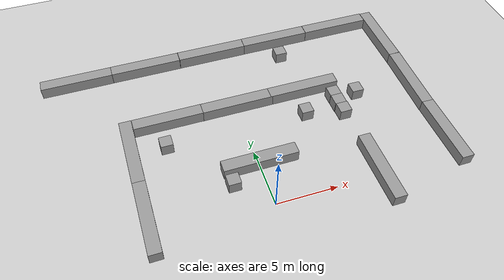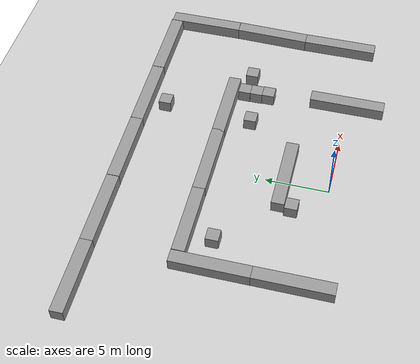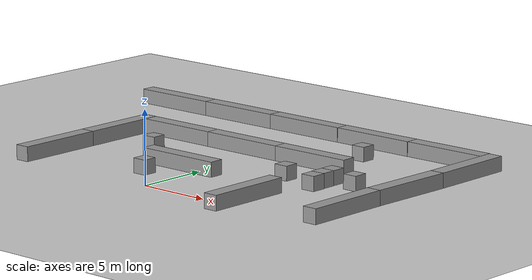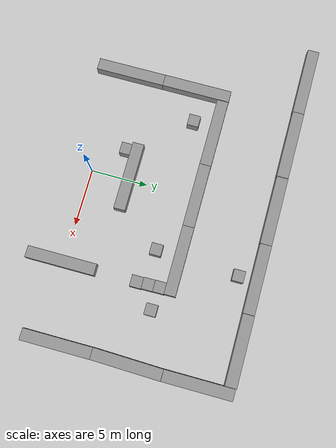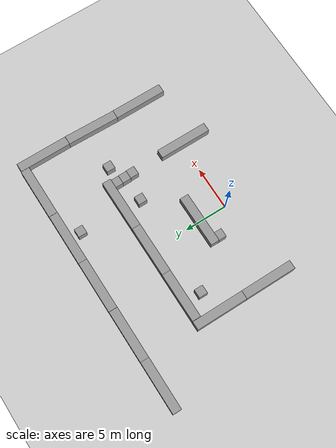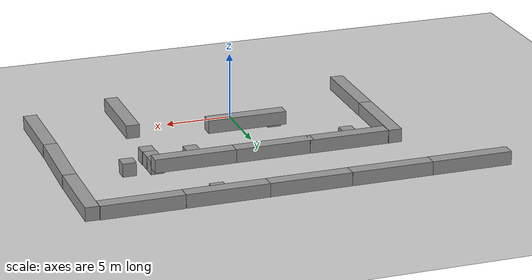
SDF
<sdf version="1.6">
 <world name="default">
  <model name="ground_plane">
   <static>1</static>
   <link name="link">
    <collision name="collision">
     <geometry><plane><normal>0 0 1</normal><size>100 100</size></plane></geometry>
     <surface>
      <contact><collide_bitmask>65535</collide_bitmask></contact>
      <friction><ode><mu>100</mu><mu2>50</mu2></ode></friction>
     </surface>
    </collision>
    <visual name="visual">
     <cast_shadows>0</cast_shadows>
     <geometry><plane><normal>0 0 1</normal><size>100 100</size></plane></geometry>
     <material>
      <script><uri>file://media/materials/scripts/gazebo.material</uri><name>Gazebo/Grey</name></script>
     </material>
    </visual>
   </link>
  </model>
  <model name="long_wall_0_0">
   <link name="link">
    <inertial>
     <mass>1</mass>
     <inertia>
      <ixx>0.166667</ixx>
      <ixy>0</ixy>
      <ixz>0</ixz>
      <iyy>0.166667</iyy>
      <iyz>0</iyz>
      <izz>0.166667</izz>
     </inertia>
    </inertial>
    <visual name="visual">
     <geometry><box><size>6 1 1</size></box></geometry>
     <material>
      <script><name>Gazebo/Grey</name><uri>file://media/materials/scripts/gazebo.material</uri></script>
      <shader type="vertex"><normal_map>__default__</normal_map></shader>
      <ambient>0.3 0.3 0.3 1</ambient>
      <diffuse>0.7 0.7 0.7 1</diffuse>
      <specular>0.01 0.01 0.01 1</specular>
      <emissive>0 0 0 1</emissive>
     </material>
     <pose>0 0 0.5 0 -0 0</pose>
    </visual>
    <collision name="collision">
     <geometry><box><size>1 1 1</size></box></geometry>
     <surface>
      <friction>
       <ode><mu>1</mu><mu2>1</mu2><fdir1>0 0 0</fdir1><slip1>0</slip1><slip2>0</slip2></ode>
       <torsional>
        <coefficient>1</coefficient>
        <patch_radius>0</patch_radius>
        <surface_radius>0</surface_radius>
        <use_patch_radius>1</use_patch_radius>
        <ode><slip>0</slip></ode>
       </torsional>
      </friction>
      <bounce><restitution_coefficient>0</restitution_coefficient><threshold>1e+06</threshold></bounce>
      <contact>
       <collide_without_contact>0</collide_without_contact>
       <collide_without_contact_bitmask>1</collide_without_contact_bitmask>
       <collide_bitmask>1</collide_bitmask>
       <ode>
        <soft_cfm>0</soft_cfm>
        <soft_erp>0.2</soft_erp>
        <kp>1e+13</kp>
        <kd>1</kd>
        <max_vel>0.01</max_vel>
        <min_depth>0</min_depth>
       </ode>
       <bullet>
        <split_impulse>1</split_impulse>
        <split_impulse_penetration_threshold>-0.01</split_impulse_penetration_threshold>
        <soft_cfm>0</soft_cfm>
        <soft_erp>0.2</soft_erp>
        <kp>1e+13</kp>
        <kd>1</kd>
       </bullet>
      </contact>
     </surface>
    </collision>
   </link>
   <static>0</static>
   <pose>-0.064351 3.46733 0.5 0 -0 0</pose>
  </model>
  <model name="unit_box_0">
   <pose>-2.48602 2.47883 0.499995 0 1e-05 0</pose>
   <link name="link">
    <inertial>
     <mass>1</mass>
     <inertia>
      <ixx>0.166667</ixx>
      <ixy>0</ixy>
      <ixz>0</ixz>
      <iyy>0.166667</iyy>
      <iyz>0</iyz>
      <izz>0.166667</izz>
     </inertia>
    </inertial>
    <collision name="collision"><geometry><box><size>1 1 1</size></box></geometry></collision>
    <visual name="visual">
     <geometry><box><size>1 1 1</size></box></geometry>
     <material>
      <script><name>Gazebo/Grey</name><uri>file://media/materials/scripts/gazebo.material</uri></script>
     </material>
    </visual>
   </link>
  </model>
  <model name="long_wall_0_2">
   <link name="link">
    <inertial>
     <mass>1</mass>
     <inertia>
      <ixx>0.166667</ixx>
      <ixy>0</ixy>
      <ixz>0</ixz>
      <iyy>0.166667</iyy>
      <iyz>0</iyz>
      <izz>0.166667</izz>
     </inertia>
    </inertial>
    <visual name="visual">
     <geometry><box><size>6 1 1</size></box></geometry>
     <material>
      <script><name>Gazebo/Grey</name><uri>file://media/materials/scripts/gazebo.material</uri></script>
      <shader type="vertex"><normal_map>__default__</normal_map></shader>
      <ambient>0.3 0.3 0.3 1</ambient>
      <diffuse>0.7 0.7 0.7 1</diffuse>
      <specular>0.01 0.01 0.01 1</specular>
      <emissive>0 0 0 1</emissive>
     </material>
     <pose>0 0 0.5 0 -0 0</pose>
    </visual>
    <collision name="collision">
     <geometry><box><size>1 1 1</size></box></geometry>
     <surface>
      <friction>
       <ode><mu>1</mu><mu2>1</mu2><fdir1>0 0 0</fdir1><slip1>0</slip1><slip2>0</slip2></ode>
       <torsional>
        <coefficient>1</coefficient>
        <patch_radius>0</patch_radius>
        <surface_radius>0</surface_radius>
        <use_patch_radius>1</use_patch_radius>
        <ode><slip>0</slip></ode>
       </torsional>
      </friction>
      <bounce><restitution_coefficient>0</restitution_coefficient><threshold>1e+06</threshold></bounce>
      <contact>
       <collide_without_contact>0</collide_without_contact>
       <collide_without_contact_bitmask>1</collide_without_contact_bitmask>
       <collide_bitmask>1</collide_bitmask>
       <ode>
        <soft_cfm>0</soft_cfm>
        <soft_erp>0.2</soft_erp>
        <kp>1e+13</kp>
        <kd>1</kd>
        <max_vel>0.01</max_vel>
        <min_depth>0</min_depth>
       </ode>
       <bullet>
        <split_impulse>1</split_impulse>
        <split_impulse_penetration_threshold>-0.01</split_impulse_penetration_threshold>
        <soft_cfm>0</soft_cfm>
        <soft_erp>0.2</soft_erp>
        <kp>1e+13</kp>
        <kd>1</kd>
       </bullet>
      </contact>
     </surface>
    </collision>
   </link>
   <static>0</static>
   <pose>-0.017464 9.51056 0.5 0 -0 0</pose>
  </model>
  <model name="long_wall_0_4">
   <link name="link">
    <inertial>
     <mass>1</mass>
     <inertia>
      <ixx>0.166667</ixx>
      <ixy>0</ixy>
      <ixz>0</ixz>
      <iyy>0.166667</iyy>
      <iyz>0</iyz>
      <izz>0.166667</izz>
     </inertia>
    </inertial>
    <visual name="visual">
     <geometry><box><size>6 1 1</size></box></geometry>
     <material>
      <script><name>Gazebo/Grey</name><uri>file://media/materials/scripts/gazebo.material</uri></script>
      <shader type="vertex"><normal_map>__default__</normal_map></shader>
      <ambient>0.3 0.3 0.3 1</ambient>
      <diffuse>0.7 0.7 0.7 1</diffuse>
      <specular>0.01 0.01 0.01 1</specular>
      <emissive>0 0 0 1</emissive>
     </material>
     <pose>0 0 0.5 0 -0 0</pose>
    </visual>
    <collision name="collision">
     <geometry><box><size>1 1 1</size></box></geometry>
     <surface>
      <friction>
       <ode><mu>1</mu><mu2>1</mu2><fdir1>0 0 0</fdir1><slip1>0</slip1><slip2>0</slip2></ode>
       <torsional>
        <coefficient>1</coefficient>
        <patch_radius>0</patch_radius>
        <surface_radius>0</surface_radius>
        <use_patch_radius>1</use_patch_radius>
        <ode><slip>0</slip></ode>
       </torsional>
      </friction>
      <bounce><restitution_coefficient>0</restitution_coefficient><threshold>1e+06</threshold></bounce>
      <contact>
       <collide_without_contact>0</collide_without_contact>
       <collide_without_contact_bitmask>1</collide_without_contact_bitmask>
       <collide_bitmask>1</collide_bitmask>
       <ode>
        <soft_cfm>0</soft_cfm>
        <soft_erp>0.2</soft_erp>
        <kp>1e+13</kp>
        <kd>1</kd>
        <max_vel>0.01</max_vel>
        <min_depth>0</min_depth>
       </ode>
       <bullet>
        <split_impulse>1</split_impulse>
        <split_impulse_penetration_threshold>-0.01</split_impulse_penetration_threshold>
        <soft_cfm>0</soft_cfm>
        <soft_erp>0.2</soft_erp>
        <kp>1e+13</kp>
        <kd>1</kd>
       </bullet>
      </contact>
     </surface>
    </collision>
   </link>
   <static>0</static>
   <pose>5.83103 9.51107 0.5 0 -0 0</pose>
  </model>
  <model name="long_wall_0_6">
   <link name="link">
    <inertial>
     <mass>1</mass>
     <inertia>
      <ixx>0.166667</ixx>
      <ixy>0</ixy>
      <ixz>0</ixz>
      <iyy>0.166667</iyy>
      <iyz>0</iyz>
      <izz>0.166667</izz>
     </inertia>
    </inertial>
    <visual name="visual">
     <geometry><box><size>6 1 1</size></box></geometry>
     <material>
      <script><name>Gazebo/Grey</name><uri>file://media/materials/scripts/gazebo.material</uri></script>
      <shader type="vertex"><normal_map>__default__</normal_map></shader>
      <ambient>0.3 0.3 0.3 1</ambient>
      <diffuse>0.7 0.7 0.7 1</diffuse>
      <specular>0.01 0.01 0.01 1</specular>
      <emissive>0 0 0 1</emissive>
     </material>
     <pose>0 0 0.5 0 -0 0</pose>
    </visual>
    <collision name="collision">
     <geometry><box><size>1 1 1</size></box></geometry>
     <surface>
      <friction>
       <ode><mu>1</mu><mu2>1</mu2><fdir1>0 0 0</fdir1><slip1>0</slip1><slip2>0</slip2></ode>
       <torsional>
        <coefficient>1</coefficient>
        <patch_radius>0</patch_radius>
        <surface_radius>0</surface_radius>
        <use_patch_radius>1</use_patch_radius>
        <ode><slip>0</slip></ode>
       </torsional>
      </friction>
      <bounce><restitution_coefficient>0</restitution_coefficient><threshold>1e+06</threshold></bounce>
      <contact>
       <collide_without_contact>0</collide_without_contact>
       <collide_without_contact_bitmask>1</collide_without_contact_bitmask>
       <collide_bitmask>1</collide_bitmask>
       <ode>
        <soft_cfm>0</soft_cfm>
        <soft_erp>0.2</soft_erp>
        <kp>1e+13</kp>
        <kd>1</kd>
        <max_vel>0.01</max_vel>
        <min_depth>0</min_depth>
       </ode>
       <bullet>
        <split_impulse>1</split_impulse>
        <split_impulse_penetration_threshold>-0.01</split_impulse_penetration_threshold>
        <soft_cfm>0</soft_cfm>
        <soft_erp>0.2</soft_erp>
        <kp>1e+13</kp>
        <kd>1</kd>
       </bullet>
      </contact>
     </surface>
    </collision>
   </link>
   <static>0</static>
   <pose>8.40487 -0.007823 0.5 0 0 -1.5708</pose>
  </model>
  <model name="unit_box_1">
   <pose>8.34623 8.52916 0.499995 -1e-05 -0 0.000273</pose>
   <link name="link">
    <inertial>
     <mass>1</mass>
     <inertia>
      <ixx>0.166667</ixx>
      <ixy>0</ixy>
      <ixz>0</ixz>
      <iyy>0.166667</iyy>
      <iyz>0</iyz>
      <izz>0.166667</izz>
     </inertia>
    </inertial>
    <collision name="collision"><geometry><box><size>1 1 1</size></box></geometry></collision>
    <visual name="visual">
     <geometry><box><size>1 1 1</size></box></geometry>
     <material>
      <script><name>Gazebo/Grey</name><uri>file://media/materials/scripts/gazebo.material</uri></script>
     </material>
    </visual>
   </link>
  </model>
  <model name="unit_box_2">
   <pose>8.36218 7.52911 0.499995 0 -1e-05 0.000273</pose>
   <link name="link">
    <inertial>
     <mass>1</mass>
     <inertia>
      <ixx>0.166667</ixx>
      <ixy>0</ixy>
      <ixz>0</ixz>
      <iyy>0.166667</iyy>
      <iyz>0</iyz>
      <izz>0.166667</izz>
     </inertia>
    </inertial>
    <collision name="collision"><geometry><box><size>1 1 1</size></box></geometry></collision>
    <visual name="visual">
     <geometry><box><size>1 1 1</size></box></geometry>
     <material>
      <script><name>Gazebo/Grey</name><uri>file://media/materials/scripts/gazebo.material</uri></script>
     </material>
    </visual>
   </link>
  </model>
  <model name="unit_box_3">
   <pose>8.40515 6.52912 0.499995 0 -1e-05 0.00027</pose>
   <link name="link">
    <inertial>
     <mass>1</mass>
     <inertia>
      <ixx>0.166667</ixx>
      <ixy>0</ixy>
      <ixz>0</ixz>
      <iyy>0.166667</iyy>
      <iyz>0</iyz>
      <izz>0.166667</izz>
     </inertia>
    </inertial>
    <collision name="collision"><geometry><box><size>1 1 1</size></box></geometry></collision>
    <visual name="visual">
     <geometry><box><size>1 1 1</size></box></geometry>
     <material>
      <script><name>Gazebo/Grey</name><uri>file://media/materials/scripts/gazebo.material</uri></script>
     </material>
    </visual>
   </link>
  </model>
  <model name="long_wall_0_7">
   <link name="link">
    <inertial>
     <mass>1</mass>
     <inertia>
      <ixx>0.166667</ixx>
      <ixy>0</ixy>
      <ixz>0</ixz>
      <iyy>0.166667</iyy>
      <iyz>0</iyz>
      <izz>0.166667</izz>
     </inertia>
    </inertial>
    <visual name="visual">
     <geometry><box><size>6 1 1</size></box></geometry>
     <material>
      <script><name>Gazebo/Grey</name><uri>file://media/materials/scripts/gazebo.material</uri></script>
      <shader type="vertex"><normal_map>__default__</normal_map></shader>
      <ambient>0.3 0.3 0.3 1</ambient>
      <diffuse>0.7 0.7 0.7 1</diffuse>
      <specular>0.01 0.01 0.01 1</specular>
      <emissive>0 0 0 1</emissive>
     </material>
     <pose>0 0 0.5 0 -0 0</pose>
    </visual>
    <collision name="collision">
     <geometry><box><size>1 1 1</size></box></geometry>
     <surface>
      <friction>
       <ode><mu>1</mu><mu2>1</mu2><fdir1>0 0 0</fdir1><slip1>0</slip1><slip2>0</slip2></ode>
       <torsional>
        <coefficient>1</coefficient>
        <patch_radius>0</patch_radius>
        <surface_radius>0</surface_radius>
        <use_patch_radius>1</use_patch_radius>
        <ode><slip>0</slip></ode>
       </torsional>
      </friction>
      <bounce><restitution_coefficient>0</restitution_coefficient><threshold>1e+06</threshold></bounce>
      <contact>
       <collide_without_contact>0</collide_without_contact>
       <collide_without_contact_bitmask>1</collide_without_contact_bitmask>
       <collide_bitmask>1</collide_bitmask>
       <ode>
        <soft_cfm>0</soft_cfm>
        <soft_erp>0.2</soft_erp>
        <kp>1e+13</kp>
        <kd>1</kd>
        <max_vel>0.01</max_vel>
        <min_depth>0</min_depth>
       </ode>
       <bullet>
        <split_impulse>1</split_impulse>
        <split_impulse_penetration_threshold>-0.01</split_impulse_penetration_threshold>
        <soft_cfm>0</soft_cfm>
        <soft_erp>0.2</soft_erp>
        <kp>1e+13</kp>
        <kd>1</kd>
       </bullet>
      </contact>
     </surface>
    </collision>
   </link>
   <static>0</static>
   <pose>-5.72862 9.522 0.5 0 -0 0</pose>
  </model>
  <model name="long_wall_0_9">
   <link name="link">
    <inertial>
     <mass>1</mass>
     <inertia>
      <ixx>0.166667</ixx>
      <ixy>0</ixy>
      <ixz>0</ixz>
      <iyy>0.166667</iyy>
      <iyz>0</iyz>
      <izz>0.166667</izz>
     </inertia>
    </inertial>
    <visual name="visual">
     <geometry><box><size>6 1 1</size></box></geometry>
     <material>
      <script><name>Gazebo/Grey</name><uri>file://media/materials/scripts/gazebo.material</uri></script>
      <shader type="vertex"><normal_map>__default__</normal_map></shader>
      <ambient>0.3 0.3 0.3 1</ambient>
      <diffuse>0.7 0.7 0.7 1</diffuse>
      <specular>0.01 0.01 0.01 1</specular>
      <emissive>0 0 0 1</emissive>
     </material>
     <pose>0 0 0.5 0 -0 0</pose>
    </visual>
    <collision name="collision">
     <geometry><box><size>1 1 1</size></box></geometry>
     <surface>
      <friction>
       <ode><mu>1</mu><mu2>1</mu2><fdir1>0 0 0</fdir1><slip1>0</slip1><slip2>0</slip2></ode>
       <torsional>
        <coefficient>1</coefficient>
        <patch_radius>0</patch_radius>
        <surface_radius>0</surface_radius>
        <use_patch_radius>1</use_patch_radius>
        <ode><slip>0</slip></ode>
       </torsional>
      </friction>
      <bounce><restitution_coefficient>0</restitution_coefficient><threshold>1e+06</threshold></bounce>
      <contact>
       <collide_without_contact>0</collide_without_contact>
       <collide_without_contact_bitmask>1</collide_without_contact_bitmask>
       <collide_bitmask>1</collide_bitmask>
       <ode>
        <soft_cfm>0</soft_cfm>
        <soft_erp>0.2</soft_erp>
        <kp>1e+13</kp>
        <kd>1</kd>
        <max_vel>0.01</max_vel>
        <min_depth>0</min_depth>
       </ode>
       <bullet>
        <split_impulse>1</split_impulse>
        <split_impulse_penetration_threshold>-0.01</split_impulse_penetration_threshold>
        <soft_cfm>0</soft_cfm>
        <soft_erp>0.2</soft_erp>
        <kp>1e+13</kp>
        <kd>1</kd>
       </bullet>
      </contact>
     </surface>
    </collision>
   </link>
   <static>0</static>
   <pose>-9.2589 7.02842 0.5 0 0 -1.5708</pose>
  </model>
  <model name="long_wall_0_10">
   <link name="link">
    <inertial>
     <mass>1</mass>
     <inertia>
      <ixx>0.166667</ixx>
      <ixy>0</ixy>
      <ixz>0</ixz>
      <iyy>0.166667</iyy>
      <iyz>0</iyz>
      <izz>0.166667</izz>
     </inertia>
    </inertial>
    <visual name="visual">
     <geometry><box><size>6 1 1</size></box></geometry>
     <material>
      <script><name>Gazebo/Grey</name><uri>file://media/materials/scripts/gazebo.material</uri></script>
      <shader type="vertex"><normal_map>__default__</normal_map></shader>
      <ambient>0.3 0.3 0.3 1</ambient>
      <diffuse>0.7 0.7 0.7 1</diffuse>
      <specular>0.01 0.01 0.01 1</specular>
      <emissive>0 0 0 1</emissive>
     </material>
     <pose>0 0 0.5 0 -0 0</pose>
    </visual>
    <collision name="collision">
     <geometry><box><size>1 1 1</size></box></geometry>
     <surface>
      <friction>
       <ode><mu>1</mu><mu2>1</mu2><fdir1>0 0 0</fdir1><slip1>0</slip1><slip2>0</slip2></ode>
       <torsional>
        <coefficient>1</coefficient>
        <patch_radius>0</patch_radius>
        <surface_radius>0</surface_radius>
        <use_patch_radius>1</use_patch_radius>
        <ode><slip>0</slip></ode>
       </torsional>
      </friction>
      <bounce><restitution_coefficient>0</restitution_coefficient><threshold>1e+06</threshold></bounce>
      <contact>
       <collide_without_contact>0</collide_without_contact>
       <collide_without_contact_bitmask>1</collide_without_contact_bitmask>
       <collide_bitmask>1</collide_bitmask>
       <ode>
        <soft_cfm>0</soft_cfm>
        <soft_erp>0.2</soft_erp>
        <kp>1e+13</kp>
        <kd>1</kd>
        <max_vel>0.01</max_vel>
        <min_depth>0</min_depth>
       </ode>
       <bullet>
        <split_impulse>1</split_impulse>
        <split_impulse_penetration_threshold>-0.01</split_impulse_penetration_threshold>
        <soft_cfm>0</soft_cfm>
        <soft_erp>0.2</soft_erp>
        <kp>1e+13</kp>
        <kd>1</kd>
       </bullet>
      </contact>
     </surface>
    </collision>
   </link>
   <static>0</static>
   <pose>-9.25333 1.037 0.5 0 0 -1.5708</pose>
  </model>
  <model name="long_wall_0_17">
   <link name="link">
    <inertial>
     <mass>1</mass>
     <inertia>
      <ixx>0.166667</ixx>
      <ixy>0</ixy>
      <ixz>0</ixz>
      <iyy>0.166667</iyy>
      <iyz>0</iyz>
      <izz>0.166667</izz>
     </inertia>
    </inertial>
    <visual name="visual">
     <geometry><box><size>6 1 1</size></box></geometry>
     <material>
      <script><name>Gazebo/Grey</name><uri>file://media/materials/scripts/gazebo.material</uri></script>
      <shader type="vertex"><normal_map>__default__</normal_map></shader>
      <ambient>0.3 0.3 0.3 1</ambient>
      <diffuse>0.7 0.7 0.7 1</diffuse>
      <specular>0.01 0.01 0.01 1</specular>
      <emissive>0 0 0 1</emissive>
     </material>
     <pose>0 0 0.5 0 -0 0</pose>
    </visual>
    <collision name="collision">
     <geometry><box><size>1 1 1</size></box></geometry>
     <surface>
      <friction>
       <ode><mu>1</mu><mu2>1</mu2><fdir1>0 0 0</fdir1><slip1>0</slip1><slip2>0</slip2></ode>
       <torsional>
        <coefficient>1</coefficient>
        <patch_radius>0</patch_radius>
        <surface_radius>0</surface_radius>
        <use_patch_radius>1</use_patch_radius>
        <ode><slip>0</slip></ode>
       </torsional>
      </friction>
      <bounce><restitution_coefficient>0</restitution_coefficient><threshold>1e+06</threshold></bounce>
      <contact>
       <collide_without_contact>0</collide_without_contact>
       <collide_without_contact_bitmask>1</collide_without_contact_bitmask>
       <collide_bitmask>1</collide_bitmask>
       <ode>
        <soft_cfm>0</soft_cfm>
        <soft_erp>0.2</soft_erp>
        <kp>1e+13</kp>
        <kd>1</kd>
        <max_vel>0.01</max_vel>
        <min_depth>0</min_depth>
       </ode>
       <bullet>
        <split_impulse>1</split_impulse>
        <split_impulse_penetration_threshold>-0.01</split_impulse_penetration_threshold>
        <soft_cfm>0</soft_cfm>
        <soft_erp>0.2</soft_erp>
        <kp>1e+13</kp>
        <kd>1</kd>
       </bullet>
      </contact>
     </surface>
    </collision>
   </link>
   <static>0</static>
   <pose>5.6186 16.1786 0.5 0 -0 0</pose>
  </model>
  <model name="long_wall_0_18">
   <link name="link">
    <inertial>
     <mass>1</mass>
     <inertia>
      <ixx>0.166667</ixx>
      <ixy>0</ixy>
      <ixz>0</ixz>
      <iyy>0.166667</iyy>
      <iyz>0</iyz>
      <izz>0.166667</izz>
     </inertia>
    </inertial>
    <visual name="visual">
     <geometry><box><size>6 1 1</size></box></geometry>
     <material>
      <script><name>Gazebo/Grey</name><uri>file://media/materials/scripts/gazebo.material</uri></script>
      <shader type="vertex"><normal_map>__default__</normal_map></shader>
      <ambient>0.3 0.3 0.3 1</ambient>
      <diffuse>0.7 0.7 0.7 1</diffuse>
      <specular>0.01 0.01 0.01 1</specular>
      <emissive>0 0 0 1</emissive>
     </material>
     <pose>0 0 0.5 0 -0 0</pose>
    </visual>
    <collision name="collision">
     <geometry><box><size>1 1 1</size></box></geometry>
     <surface>
      <friction>
       <ode><mu>1</mu><mu2>1</mu2><fdir1>0 0 0</fdir1><slip1>0</slip1><slip2>0</slip2></ode>
       <torsional>
        <coefficient>1</coefficient>
        <patch_radius>0</patch_radius>
        <surface_radius>0</surface_radius>
        <use_patch_radius>1</use_patch_radius>
        <ode><slip>0</slip></ode>
       </torsional>
      </friction>
      <bounce><restitution_coefficient>0</restitution_coefficient><threshold>1e+06</threshold></bounce>
      <contact>
       <collide_without_contact>0</collide_without_contact>
       <collide_without_contact_bitmask>1</collide_without_contact_bitmask>
       <collide_bitmask>1</collide_bitmask>
       <ode>
        <soft_cfm>0</soft_cfm>
        <soft_erp>0.2</soft_erp>
        <kp>1e+13</kp>
        <kd>1</kd>
        <max_vel>0.01</max_vel>
        <min_depth>0</min_depth>
       </ode>
       <bullet>
        <split_impulse>1</split_impulse>
        <split_impulse_penetration_threshold>-0.01</split_impulse_penetration_threshold>
        <soft_cfm>0</soft_cfm>
        <soft_erp>0.2</soft_erp>
        <kp>1e+13</kp>
        <kd>1</kd>
       </bullet>
      </contact>
     </surface>
    </collision>
   </link>
   <static>0</static>
   <pose>-0.38274 16.1708 0.5 0 -0 0</pose>
  </model>
  <model name="long_wall_0_19">
   <link name="link">
    <inertial>
     <mass>1</mass>
     <inertia>
      <ixx>0.166667</ixx>
      <ixy>0</ixy>
      <ixz>0</ixz>
      <iyy>0.166667</iyy>
      <iyz>0</iyz>
      <izz>0.166667</izz>
     </inertia>
    </inertial>
    <visual name="visual">
     <geometry><box><size>6 1 1</size></box></geometry>
     <material>
      <script><name>Gazebo/Grey</name><uri>file://media/materials/scripts/gazebo.material</uri></script>
      <shader type="vertex"><normal_map>__default__</normal_map></shader>
      <ambient>0.3 0.3 0.3 1</ambient>
      <diffuse>0.7 0.7 0.7 1</diffuse>
      <specular>0.01 0.01 0.01 1</specular>
      <emissive>0 0 0 1</emissive>
     </material>
     <pose>0 0 0.5 0 -0 0</pose>
    </visual>
    <collision name="collision">
     <geometry><box><size>1 1 1</size></box></geometry>
     <surface>
      <friction>
       <ode><mu>1</mu><mu2>1</mu2><fdir1>0 0 0</fdir1><slip1>0</slip1><slip2>0</slip2></ode>
       <torsional>
        <coefficient>1</coefficient>
        <patch_radius>0</patch_radius>
        <surface_radius>0</surface_radius>
        <use_patch_radius>1</use_patch_radius>
        <ode><slip>0</slip></ode>
       </torsional>
      </friction>
      <bounce><restitution_coefficient>0</restitution_coefficient><threshold>1e+06</threshold></bounce>
      <contact>
       <collide_without_contact>0</collide_without_contact>
       <collide_without_contact_bitmask>1</collide_without_contact_bitmask>
       <collide_bitmask>1</collide_bitmask>
       <ode>
        <soft_cfm>0</soft_cfm>
        <soft_erp>0.2</soft_erp>
        <kp>1e+13</kp>
        <kd>1</kd>
        <max_vel>0.01</max_vel>
        <min_depth>0</min_depth>
       </ode>
       <bullet>
        <split_impulse>1</split_impulse>
        <split_impulse_penetration_threshold>-0.01</split_impulse_penetration_threshold>
        <soft_cfm>0</soft_cfm>
        <soft_erp>0.2</soft_erp>
        <kp>1e+13</kp>
        <kd>1</kd>
       </bullet>
      </contact>
     </surface>
    </collision>
   </link>
   <static>0</static>
   <pose>-6.40068 16.163 0.5 0 -0 0</pose>
  </model>
  <model name="long_wall_0_20">
   <link name="link">
    <inertial>
     <mass>1</mass>
     <inertia>
      <ixx>0.166667</ixx>
      <ixy>0</ixy>
      <ixz>0</ixz>
      <iyy>0.166667</iyy>
      <iyz>0</iyz>
      <izz>0.166667</izz>
     </inertia>
    </inertial>
    <visual name="visual">
     <geometry><box><size>6 1 1</size></box></geometry>
     <material>
      <script><name>Gazebo/Grey</name><uri>file://media/materials/scripts/gazebo.material</uri></script>
      <shader type="vertex"><normal_map>__default__</normal_map></shader>
      <ambient>0.3 0.3 0.3 1</ambient>
      <diffuse>0.7 0.7 0.7 1</diffuse>
      <specular>0.01 0.01 0.01 1</specular>
      <emissive>0 0 0 1</emissive>
     </material>
     <pose>0 0 0.5 0 -0 0</pose>
    </visual>
    <collision name="collision">
     <geometry><box><size>1 1 1</size></box></geometry>
     <surface>
      <friction>
       <ode><mu>1</mu><mu2>1</mu2><fdir1>0 0 0</fdir1><slip1>0</slip1><slip2>0</slip2></ode>
       <torsional>
        <coefficient>1</coefficient>
        <patch_radius>0</patch_radius>
        <surface_radius>0</surface_radius>
        <use_patch_radius>1</use_patch_radius>
        <ode><slip>0</slip></ode>
       </torsional>
      </friction>
      <bounce><restitution_coefficient>0</restitution_coefficient><threshold>1e+06</threshold></bounce>
      <contact>
       <collide_without_contact>0</collide_without_contact>
       <collide_without_contact_bitmask>1</collide_without_contact_bitmask>
       <collide_bitmask>1</collide_bitmask>
       <ode>
        <soft_cfm>0</soft_cfm>
        <soft_erp>0.2</soft_erp>
        <kp>1e+13</kp>
        <kd>1</kd>
        <max_vel>0.01</max_vel>
        <min_depth>0</min_depth>
       </ode>
       <bullet>
        <split_impulse>1</split_impulse>
        <split_impulse_penetration_threshold>-0.01</split_impulse_penetration_threshold>
        <soft_cfm>0</soft_cfm>
        <soft_erp>0.2</soft_erp>
        <kp>1e+13</kp>
        <kd>1</kd>
       </bullet>
      </contact>
     </surface>
    </collision>
   </link>
   <static>0</static>
   <pose>-12.3993 16.1554 0.5 0 -0 0</pose>
  </model>
  <model name="long_wall_0_28">
   <link name="link">
    <inertial>
     <mass>1</mass>
     <inertia>
      <ixx>0.166667</ixx>
      <ixy>0</ixy>
      <ixz>0</ixz>
      <iyy>0.166667</iyy>
      <iyz>0</iyz>
      <izz>0.166667</izz>
     </inertia>
    </inertial>
    <visual name="visual">
     <geometry><box><size>6 1 1</size></box></geometry>
     <material>
      <script><name>Gazebo/Grey</name><uri>file://media/materials/scripts/gazebo.material</uri></script>
      <shader type="vertex"><normal_map>__default__</normal_map></shader>
      <ambient>0.3 0.3 0.3 1</ambient>
      <diffuse>0.7 0.7 0.7 1</diffuse>
      <specular>0.01 0.01 0.01 1</specular>
      <emissive>0 0 0 1</emissive>
     </material>
     <pose>0 0 0.5 0 -0 0</pose>
    </visual>
    <collision name="collision">
     <geometry><box><size>1 1 1</size></box></geometry>
     <surface>
      <friction>
       <ode><mu>1</mu><mu2>1</mu2><fdir1>0 0 0</fdir1><slip1>0</slip1><slip2>0</slip2></ode>
       <torsional>
        <coefficient>1</coefficient>
        <patch_radius>0</patch_radius>
        <surface_radius>0</surface_radius>
        <use_patch_radius>1</use_patch_radius>
        <ode><slip>0</slip></ode>
       </torsional>
      </friction>
      <bounce><restitution_coefficient>0</restitution_coefficient><threshold>1e+06</threshold></bounce>
      <contact>
       <collide_without_contact>0</collide_without_contact>
       <collide_without_contact_bitmask>1</collide_without_contact_bitmask>
       <collide_bitmask>1</collide_bitmask>
       <ode>
        <soft_cfm>0</soft_cfm>
        <soft_erp>0.2</soft_erp>
        <kp>1e+13</kp>
        <kd>1</kd>
        <max_vel>0.01</max_vel>
        <min_depth>0</min_depth>
       </ode>
       <bullet>
        <split_impulse>1</split_impulse>
        <split_impulse_penetration_threshold>-0.01</split_impulse_penetration_threshold>
        <soft_cfm>0</soft_cfm>
        <soft_erp>0.2</soft_erp>
        <kp>1e+13</kp>
        <kd>1</kd>
       </bullet>
      </contact>
     </surface>
    </collision>
   </link>
   <static>0</static>
   <pose>11.6294 16.1915 0.5 0 -0 0</pose>
  </model>
  <model name="long_wall_0_29">
   <link name="link">
    <inertial>
     <mass>1</mass>
     <inertia>
      <ixx>0.166667</ixx>
      <ixy>0</ixy>
      <ixz>0</ixz>
      <iyy>0.166667</iyy>
      <iyz>0</iyz>
      <izz>0.166667</izz>
     </inertia>
    </inertial>
    <visual name="visual">
     <geometry><box><size>6 1 1</size></box></geometry>
     <material>
      <script><name>Gazebo/Grey</name><uri>file://media/materials/scripts/gazebo.material</uri></script>
      <shader type="vertex"><normal_map>__default__</normal_map></shader>
      <ambient>0.3 0.3 0.3 1</ambient>
      <diffuse>0.7 0.7 0.7 1</diffuse>
      <specular>0.01 0.01 0.01 1</specular>
      <emissive>0 0 0 1</emissive>
     </material>
     <pose>0 0 0.5 0 -0 0</pose>
    </visual>
    <collision name="collision">
     <geometry><box><size>1 1 1</size></box></geometry>
     <surface>
      <friction>
       <ode><mu>1</mu><mu2>1</mu2><fdir1>0 0 0</fdir1><slip1>0</slip1><slip2>0</slip2></ode>
       <torsional>
        <coefficient>1</coefficient>
        <patch_radius>0</patch_radius>
        <surface_radius>0</surface_radius>
        <use_patch_radius>1</use_patch_radius>
        <ode><slip>0</slip></ode>
       </torsional>
      </friction>
      <bounce><restitution_coefficient>0</restitution_coefficient><threshold>1e+06</threshold></bounce>
      <contact>
       <collide_without_contact>0</collide_without_contact>
       <collide_without_contact_bitmask>1</collide_without_contact_bitmask>
       <collide_bitmask>1</collide_bitmask>
       <ode>
        <soft_cfm>0</soft_cfm>
        <soft_erp>0.2</soft_erp>
        <kp>1e+13</kp>
        <kd>1</kd>
        <max_vel>0.01</max_vel>
        <min_depth>0</min_depth>
       </ode>
       <bullet>
        <split_impulse>1</split_impulse>
        <split_impulse_penetration_threshold>-0.01</split_impulse_penetration_threshold>
        <soft_cfm>0</soft_cfm>
        <soft_erp>0.2</soft_erp>
        <kp>1e+13</kp>
        <kd>1</kd>
       </bullet>
      </contact>
     </surface>
    </collision>
   </link>
   <static>0</static>
   <pose>15.143 13.6247 0.5 0 0 -1.5708</pose>
  </model>
  <model name="long_wall_0_30">
   <link name="link">
    <inertial>
     <mass>1</mass>
     <inertia>
      <ixx>0.166667</ixx>
      <ixy>0</ixy>
      <ixz>0</ixz>
      <iyy>0.166667</iyy>
      <iyz>0</iyz>
      <izz>0.166667</izz>
     </inertia>
    </inertial>
    <visual name="visual">
     <geometry><box><size>6 1 1</size></box></geometry>
     <material>
      <script><name>Gazebo/Grey</name><uri>file://media/materials/scripts/gazebo.material</uri></script>
      <shader type="vertex"><normal_map>__default__</normal_map></shader>
      <ambient>0.3 0.3 0.3 1</ambient>
      <diffuse>0.7 0.7 0.7 1</diffuse>
      <specular>0.01 0.01 0.01 1</specular>
      <emissive>0 0 0 1</emissive>
     </material>
     <pose>0 0 0.5 0 -0 0</pose>
    </visual>
    <collision name="collision">
     <geometry><box><size>1 1 1</size></box></geometry>
     <surface>
      <friction>
       <ode><mu>1</mu><mu2>1</mu2><fdir1>0 0 0</fdir1><slip1>0</slip1><slip2>0</slip2></ode>
       <torsional>
        <coefficient>1</coefficient>
        <patch_radius>0</patch_radius>
        <surface_radius>0</surface_radius>
        <use_patch_radius>1</use_patch_radius>
        <ode><slip>0</slip></ode>
       </torsional>
      </friction>
      <bounce><restitution_coefficient>0</restitution_coefficient><threshold>1e+06</threshold></bounce>
      <contact>
       <collide_without_contact>0</collide_without_contact>
       <collide_without_contact_bitmask>1</collide_without_contact_bitmask>
       <collide_bitmask>1</collide_bitmask>
       <ode>
        <soft_cfm>0</soft_cfm>
        <soft_erp>0.2</soft_erp>
        <kp>1e+13</kp>
        <kd>1</kd>
        <max_vel>0.01</max_vel>
        <min_depth>0</min_depth>
       </ode>
       <bullet>
        <split_impulse>1</split_impulse>
        <split_impulse_penetration_threshold>-0.01</split_impulse_penetration_threshold>
        <soft_cfm>0</soft_cfm>
        <soft_erp>0.2</soft_erp>
        <kp>1e+13</kp>
        <kd>1</kd>
       </bullet>
      </contact>
     </surface>
    </collision>
   </link>
   <static>0</static>
   <pose>15.0703 7.61763 0.5 0 0 -1.59719</pose>
  </model>
  <model name="long_wall_0_31">
   <link name="link">
    <inertial>
     <mass>1</mass>
     <inertia>
      <ixx>0.166667</ixx>
      <ixy>0</ixy>
      <ixz>0</ixz>
      <iyy>0.166667</iyy>
      <iyz>0</iyz>
      <izz>0.166667</izz>
     </inertia>
    </inertial>
    <visual name="visual">
     <geometry><box><size>6 1 1</size></box></geometry>
     <material>
      <script><name>Gazebo/Grey</name><uri>file://media/materials/scripts/gazebo.material</uri></script>
      <shader type="vertex"><normal_map>__default__</normal_map></shader>
      <ambient>0.3 0.3 0.3 1</ambient>
      <diffuse>0.7 0.7 0.7 1</diffuse>
      <specular>0.01 0.01 0.01 1</specular>
      <emissive>0 0 0 1</emissive>
     </material>
     <pose>0 0 0.5 0 -0 0</pose>
    </visual>
    <collision name="collision">
     <geometry><box><size>1 1 1</size></box></geometry>
     <surface>
      <friction>
       <ode><mu>1</mu><mu2>1</mu2><fdir1>0 0 0</fdir1><slip1>0</slip1><slip2>0</slip2></ode>
       <torsional>
        <coefficient>1</coefficient>
        <patch_radius>0</patch_radius>
        <surface_radius>0</surface_radius>
        <use_patch_radius>1</use_patch_radius>
        <ode><slip>0</slip></ode>
       </torsional>
      </friction>
      <bounce><restitution_coefficient>0</restitution_coefficient><threshold>1e+06</threshold></bounce>
      <contact>
       <collide_without_contact>0</collide_without_contact>
       <collide_without_contact_bitmask>1</collide_without_contact_bitmask>
       <collide_bitmask>1</collide_bitmask>
       <ode>
        <soft_cfm>0</soft_cfm>
        <soft_erp>0.2</soft_erp>
        <kp>1e+13</kp>
        <kd>1</kd>
        <max_vel>0.01</max_vel>
        <min_depth>0</min_depth>
       </ode>
       <bullet>
        <split_impulse>1</split_impulse>
        <split_impulse_penetration_threshold>-0.01</split_impulse_penetration_threshold>
        <soft_cfm>0</soft_cfm>
        <soft_erp>0.2</soft_erp>
        <kp>1e+13</kp>
        <kd>1</kd>
       </bullet>
      </contact>
     </surface>
    </collision>
   </link>
   <static>0</static>
   <pose>15.0012 1.62691 0.5 0 0 -1.5708</pose>
  </model>
  <model name="unit_box_11">
   <pose>-6.51925 7.50903 0.499995 -1e-05 0 0</pose>
   <link name="link">
    <inertial>
     <mass>1</mass>
     <inertia>
      <ixx>0.166667</ixx>
      <ixy>0</ixy>
      <ixz>0</ixz>
      <iyy>0.166667</iyy>
      <iyz>0</iyz>
      <izz>0.166667</izz>
     </inertia>
    </inertial>
    <collision name="collision"><geometry><box><size>1 1 1</size></box></geometry></collision>
    <visual name="visual">
     <geometry><box><size>1 1 1</size></box></geometry>
     <material>
      <script><name>Gazebo/Grey</name><uri>file://media/materials/scripts/gazebo.material</uri></script>
     </material>
    </visual>
   </link>
  </model>
  <model name="unit_box_12">
   <pose>5.35435 7.38949 0.499995 0 1e-05 0</pose>
   <link name="link">
    <inertial>
     <mass>1</mass>
     <inertia>
      <ixx>0.166667</ixx>
      <ixy>0</ixy>
      <ixz>0</ixz>
      <iyy>0.166667</iyy>
      <iyz>0</iyz>
      <izz>0.166667</izz>
     </inertia>
    </inertial>
    <collision name="collision"><geometry><box><size>1 1 1</size></box></geometry></collision>
    <visual name="visual">
     <geometry><box><size>1 1 1</size></box></geometry>
     <material>
      <script><name>Gazebo/Grey</name><uri>file://media/materials/scripts/gazebo.material</uri></script>
     </material>
    </visual>
   </link>
  </model>
  <model name="unit_box_21">
   <pose>10.3414 8.31833 0.499995 -1e-05 0 0</pose>
   <link name="link">
    <inertial>
     <mass>1</mass>
     <inertia>
      <ixx>0.166667</ixx>
      <ixy>0</ixy>
      <ixz>0</ixz>
      <iyy>0.166667</iyy>
      <iyz>0</iyz>
      <izz>0.166667</izz>
     </inertia>
    </inertial>
    <collision name="collision"><geometry><box><size>1 1 1</size></box></geometry></collision>
    <visual name="visual">
     <geometry><box><size>1 1 1</size></box></geometry>
     <material>
      <script><name>Gazebo/Grey</name><uri>file://media/materials/scripts/gazebo.material</uri></script>
     </material>
    </visual>
   </link>
  </model>
  <model name="unit_box_22">
   <pose>5.69238 14.6519 0.499995 0 1e-05 0</pose>
   <link name="link">
    <inertial>
     <mass>1</mass>
     <inertia>
      <ixx>0.166667</ixx>
      <ixy>0</ixy>
      <ixz>0</ixz>
      <iyy>0.166667</iyy>
      <iyz>0</iyz>
      <izz>0.166667</izz>
     </inertia>
    </inertial>
    <collision name="collision"><geometry><box><size>1 1 1</size></box></geometry></collision>
    <visual name="visual">
     <geometry><box><size>1 1 1</size></box></geometry>
     <material>
      <script><name>Gazebo/Grey</name><uri>file://media/materials/scripts/gazebo.material</uri></script>
     </material>
    </visual>
   </link>
  </model>
 </world>
</sdf>
